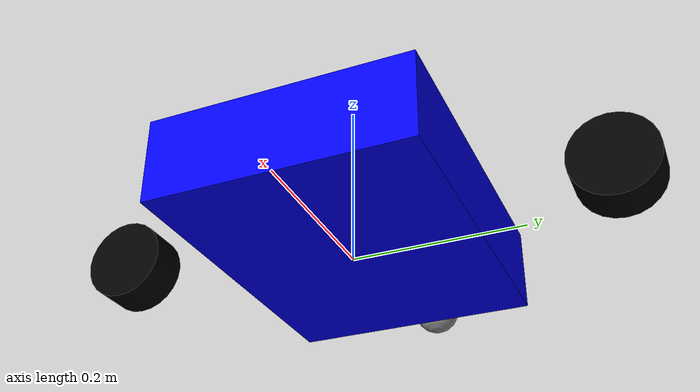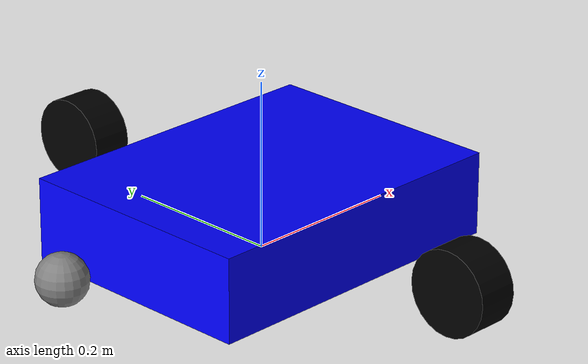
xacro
<?xml version="1.0"?>
<robot name="two_wheel_robot" xmlns:xacro="http://ros.org/wiki/xacro">

  <!-- ========== PARAMETERS ========== -->
  <xacro:property name="body_length" value="0.4"/>
  <xacro:property name="body_width"  value="0.3"/>
  <xacro:property name="body_height" value="0.1"/>
  <xacro:property name="body_mass"   value="5.0"/>

  <xacro:property name="wheel_radius" value="0.05"/>
  <xacro:property name="wheel_width"  value="0.05"/>
  <xacro:property name="wheel_mass"   value="0.5"/>
  <xacro:property name="wheel_offset_y" value="0.15"/>
  <xacro:property name="wheel_offset_z" value="0.025"/>

  <xacro:property name="caster_radius" value="0.03"/>
  <xacro:property name="caster_mass" value="0.1"/>
  <xacro:property name="caster_offset_x" value="-0.15"/>
  <xacro:property name="caster_offset_z" value="0.03"/>

  <!-- ========== MACROS ========== -->
  <xacro:macro name="inertial_box" params="mass x y z">
    <inertial>
      <mass value="${mass}"/>
      <origin xyz="0 0 0" rpy="0 0 0"/>
      <inertia ixx="${(1/12.0)*${mass}*(${y}*${y} + ${z}*${z})}"
               iyy="${(1/12.0)*${mass}*(${x}*${x} + ${z}*${z})}"
               izz="${(1/12.0)*${mass}*(${x}*${x} + ${y}*${y})}"
               ixy="0.0" ixz="0.0" iyz="0.0"/>
    </inertial>
  </xacro:macro>

  <!-- ========== BASE LINK ========== -->
  <link name="base_link">
    <visual>
      <geometry>
        <box size="${body_length} ${body_width} ${body_height}"/>
      </geometry>
      <origin xyz="0 0 ${body_height/2}" rpy="0 0 0"/>
      <material name="blue">
        <color rgba="0 0 1 1"/>
      </material>
    </visual>
    <collision>
      <geometry>
        <box size="${body_length} ${body_width} ${body_height}"/>
      </geometry>
      <origin xyz="0 0 ${body_height/2}"/>
    </collision>
    <xacro:inertial_box mass="${body_mass}" x="${body_length}" y="${body_width}" z="${body_height}"/>
  </link>

  <!-- ========== LEFT WHEEL ========== -->
  <link name="left_wheel">
    <visual>
      <geometry>
        <cylinder length="${wheel_width}" radius="${wheel_radius}"/>
      </geometry>
      <origin xyz="0 ${wheel_offset_y} ${wheel_offset_z}" rpy="0 1.5708 0"/>
      <material name="black">
        <color rgba="0 0 0 1"/>
      </material>
    </visual>
    <collision>
      <geometry>
        <cylinder length="${wheel_width}" radius="${wheel_radius}"/>
      </geometry>
      <origin xyz="0 ${wheel_offset_y} ${wheel_offset_z}" rpy="0 1.5708 0"/>
    </collision>
    <inertial>
      <mass value="${wheel_mass}"/>
      <origin xyz="0 0 0" rpy="0 0 0"/>
      <inertia ixx="0.0001" ixy="0.0" ixz="0.0"
               iyy="0.0001" iyz="0.0"
               izz="0.0001"/>
    </inertial>
  </link>

  <joint name="left_wheel_joint" type="continuous">
    <parent link="base_link"/>
    <child link="left_wheel"/>
    <origin xyz="0 ${wheel_offset_y} ${wheel_offset_z}" rpy="0 0 0"/>
    <axis xyz="0 1 0"/>
  </joint>

  <!-- ========== RIGHT WHEEL ========== -->
  <link name="right_wheel">
    <visual>
      <geometry>
        <cylinder length="${wheel_width}" radius="${wheel_radius}"/>
      </geometry>
      <origin xyz="0 -${wheel_offset_y} ${wheel_offset_z}" rpy="0 1.5708 0"/>
      <material name="black"/>
    </visual>
    <collision>
      <geometry>
        <cylinder length="${wheel_width}" radius="${wheel_radius}"/>
      </geometry>
      <origin xyz="0 -${wheel_offset_y} ${wheel_offset_z}" rpy="0 1.5708 0"/>
    </collision>
    <inertial>
      <mass value="${wheel_mass}"/>
      <origin xyz="0 0 0" rpy="0 0 0"/>
      <inertia ixx="0.0001" ixy="0.0" ixz="0.0"
               iyy="0.0001" iyz="0.0"
               izz="0.0001"/>
    </inertial>
  </link>

  <joint name="right_wheel_joint" type="continuous">
    <parent link="base_link"/>
    <child link="right_wheel"/>
    <origin xyz="0 -${wheel_offset_y} ${wheel_offset_z}" rpy="0 0 0"/>
    <axis xyz="0 1 0"/>
  </joint>

  <!-- ========== CASTER WHEEL ========== -->
  <link name="caster_wheel">
    <visual>
      <geometry>
        <sphere radius="${caster_radius}"/>
      </geometry>
      <origin xyz="${caster_offset_x} 0 ${caster_offset_z}"/>
      <material name="grey">
        <color rgba="0.5 0.5 0.5 1"/>
      </material>
    </visual>
    <collision>
      <geometry>
        <sphere radius="${caster_radius}"/>
      </geometry>
      <origin xyz="${caster_offset_x} 0 ${caster_offset_z}"/>
    </collision>
    <inertial>
      <mass value="${caster_mass}"/>
      <origin xyz="0 0 0"/>
      <inertia ixx="0.00001" iyy="0.00001" izz="0.00001"
               ixy="0.0" ixz="0.0" iyz="0.0"/>
    </inertial>
  </link>

  <joint name="caster_joint" type="fixed">
    <parent link="base_link"/>
    <child link="caster_wheel"/>
    <origin xyz="${caster_offset_x} 0 ${caster_offset_z}"/>
  </joint>

</robot>
